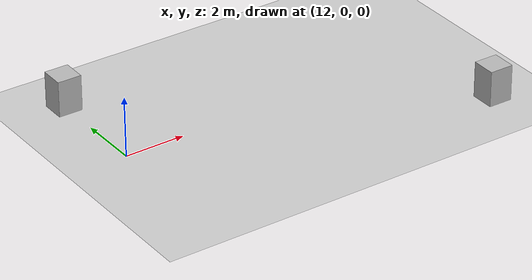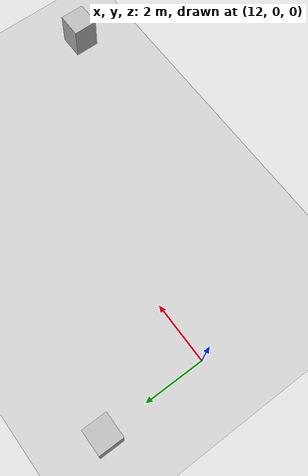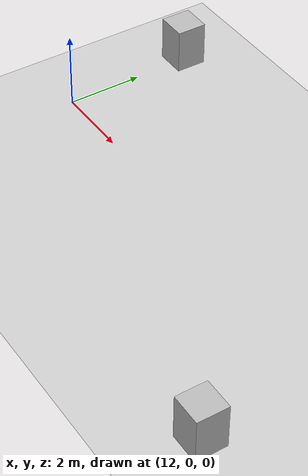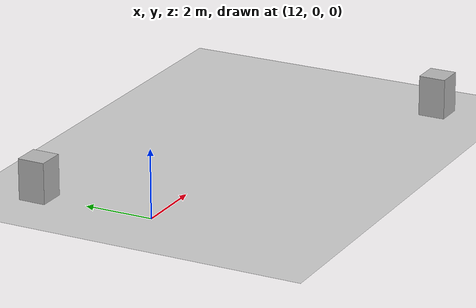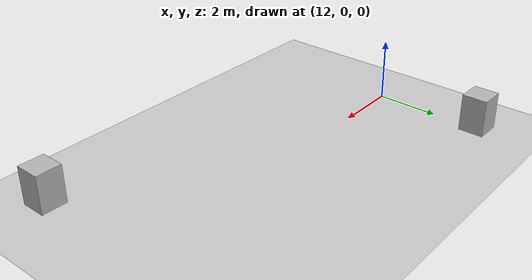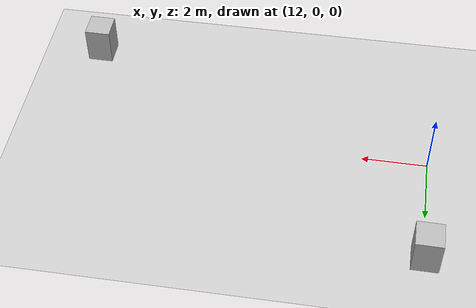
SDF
<?xml version="1.0"?>
<sdf version="1.6">
  <world name="v2-04c-q-cruise-s4491">
    <gravity>0 0 -9.81</gravity>
    <physics name="v2_deterministic" type="ode">
      <max_step_size>0.002</max_step_size>
      <real_time_update_rate>500</real_time_update_rate>
    </physics>
    <include>
      <uri>model://sun</uri>
    </include>
    <include>
      <uri>model://ground_plane</uri>
    </include>
    <model name="q-cruise-left">
      <static>true</static>
      <pose>11.962269199 3.464977431 0.600000000 0 0 -0.009869695</pose>
      <link name="link">
        <collision name="collision">
          <geometry>
            <box>
              <size>0.800000 0.800000 1.200000</size>
            </box>
          </geometry>
        </collision>
        <visual name="visual">
          <geometry>
            <box>
              <size>0.800000 0.800000 1.200000</size>
            </box>
          </geometry>
        </visual>
      </link>
    </model>
    <model name="q-cruise-right">
      <static>true</static>
      <pose>23.004674898 -3.490940118 0.600000000 0 0 -0.006407742</pose>
      <link name="link">
        <collision name="collision">
          <geometry>
            <box>
              <size>0.800000 0.800000 1.200000</size>
            </box>
          </geometry>
        </collision>
        <visual name="visual">
          <geometry>
            <box>
              <size>0.800000 0.800000 1.200000</size>
            </box>
          </geometry>
        </visual>
      </link>
    </model>
  </world>
</sdf>
